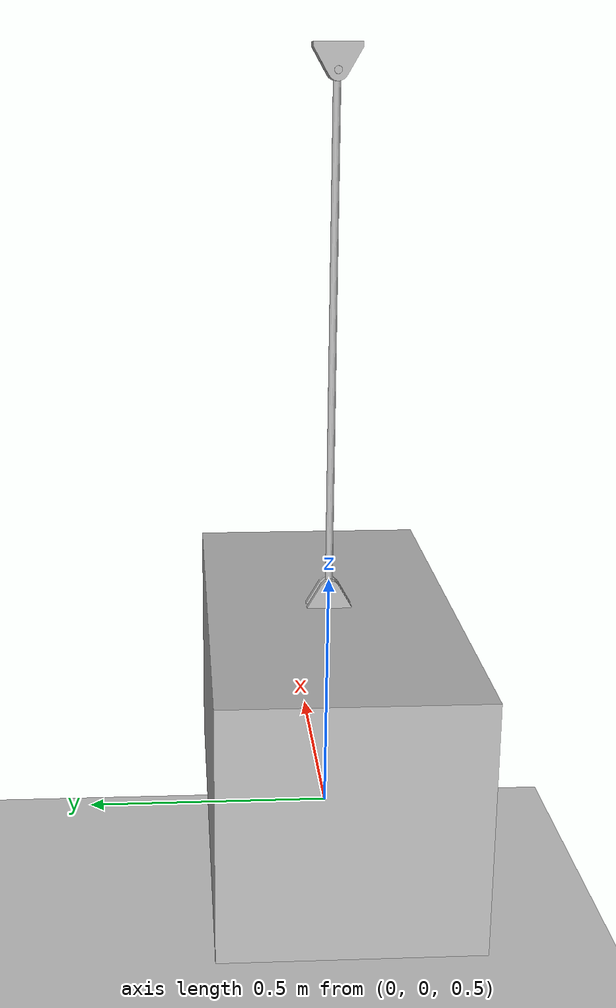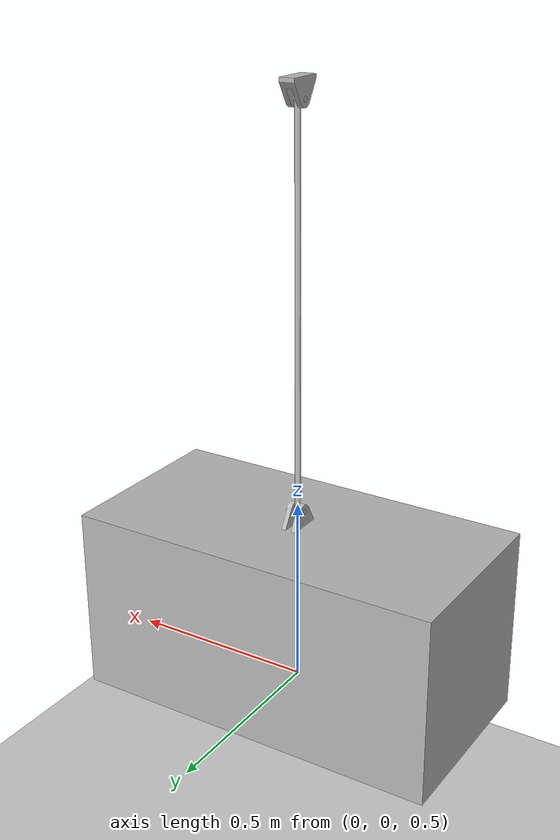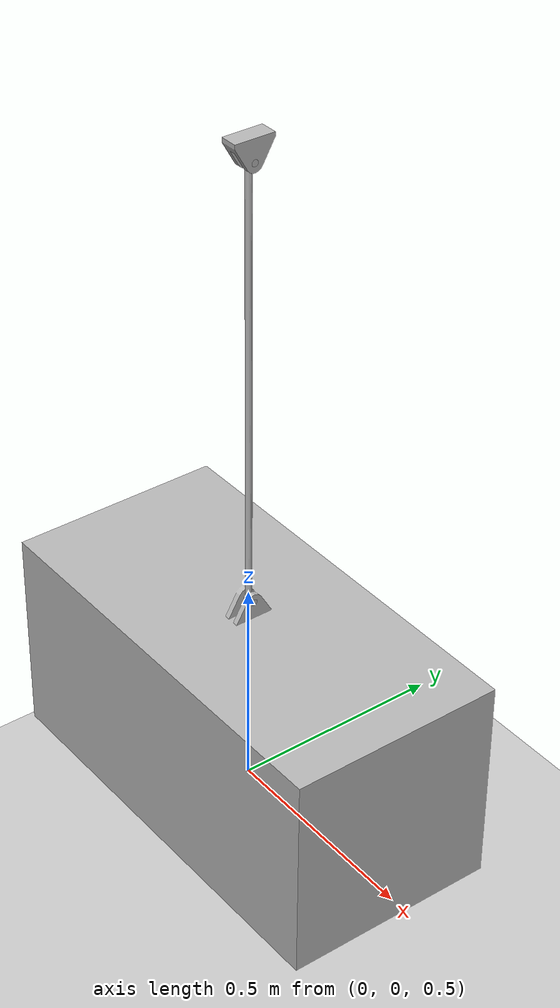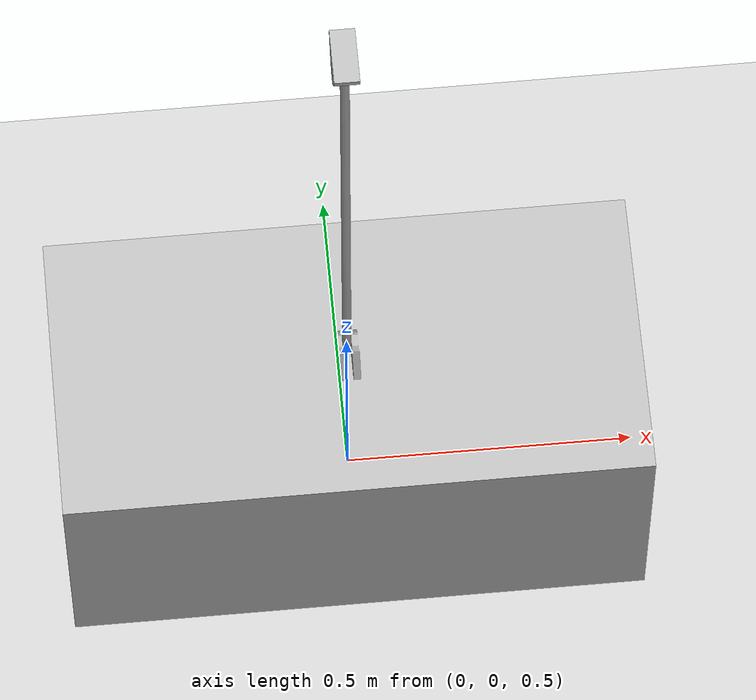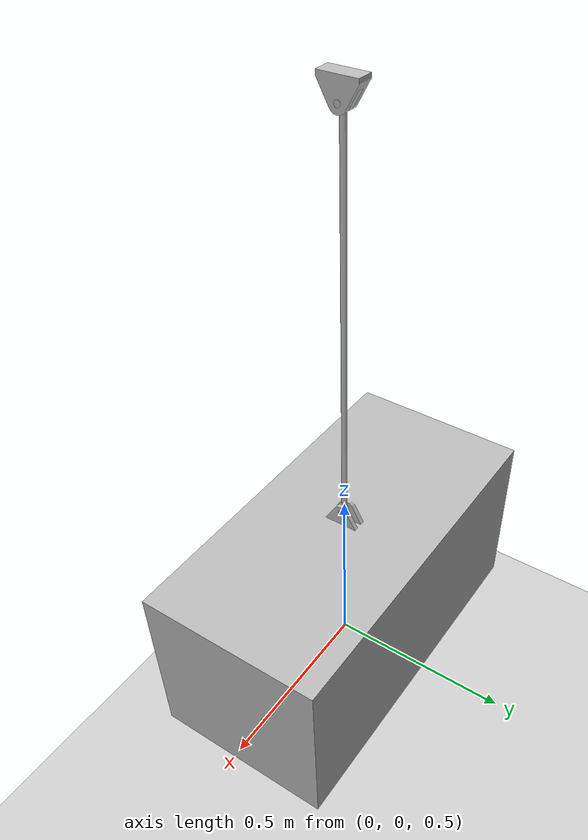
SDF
<?xml version="1.0" ?>
<sdf version="1.6">
  <world name="disturbance_pkgs_world">
    <physics name="default_physics" default="0" type="ode">
      <max_step_size>0.001</max_step_size>
      <real_time_factor>1</real_time_factor>
      <real_time_factor>1000</real_time_factor>
      <ode>
        <solver>
          <type>quick</type>
          <iters>100</iters>
          <sor>1.0</sor>
          <use_dynamic_moi_rescaling>false</use_dynamic_moi_rescaling>
        </solver>
      </ode>
    </physics>

    <include>
      <uri>model://ground_plane</uri>
    </include>

    <include>
      <uri>model://sun</uri>
    </include>

   <include>
      <uri>model://disturbance_generator</uri>
     	<pose frame=''>0 0 2.0 0 0 0</pose>
       <plugin name="plugin" filename="libdisturbance_pkgs.so"/>
    </include>
  </world>
</sdf>

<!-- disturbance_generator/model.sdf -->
<sdf version='1.6'>
  <model name='disturbance_generator'>

  <joint name="fixed to ground" type="fixed">
    <parent>world</parent>
    <child>base_link</child>
  </joint>

    <link name='base_link'>
      <pose frame=''>0 0 0 0 -0 0</pose>
      <inertial>
        <pose frame=''>0 0 0.027 0 -0 0</pose>
        <mass>1</mass>
        <inertia>
          <ixx>0.001</ixx>
          <ixy>0</ixy>
          <ixz>0</ixz>
          <iyy>0</iyy>
          <iyz>0</iyz>
          <izz>0.001</izz>
        </inertia>
      </inertial>
      <visual name='base_link_visual'>
        <pose frame=''>0 0 0 0 -0 0</pose>
        <geometry>
          <mesh>
            <scale>1 1 1</scale>
            <uri>model://disturbance_generator/meshes/base_link.STL</uri>
          </mesh>
        </geometry>
      </visual>
    </link>
    <link name='rod_link'>
      <pose frame=''>0 0 0 0 -0 0</pose>
      <inertial>
        <pose frame=''>0 0 -0.507 0 -0 0</pose>
        <mass>1</mass>
        <inertia>
          <ixx>0.097</ixx>
          <ixy>0</ixy>
          <ixz>0</ixz>
          <iyy>0.097</iyy>
          <iyz>0</iyz>
          <izz>0</izz>
        </inertia>
      </inertial>
      <visual name='rod_link_visual'>
        <pose frame=''>0 0 0 0 -0 0</pose>
        <geometry>
          <mesh>
            <scale>1 1 1</scale>
            <uri>model://disturbance_generator/meshes/rod_link.STL</uri>
          </mesh>
        </geometry>
      </visual>
    </link>
    <joint name='rod_joint' type='revolute'>
      <child>rod_link</child>
      <parent>base_link</parent>
      <axis>
        <xyz>1 0 0</xyz>
        <limit>
          <lower>-1.5707</lower>
          <upper>1.5707</upper>
        </limit>
        <dynamics>
          <spring_reference>0</spring_reference>
          <spring_stiffness>0</spring_stiffness>
        </dynamics>
        <use_parent_model_frame>1</use_parent_model_frame>
      </axis>
    </joint>
    <link name='mass_link'>
      <pose frame=''>0 0 -1.015 0 -0 0</pose>
      <inertial>
        <pose frame=''>0 0 -0.29 0 -0 0</pose>
        <mass>15</mass>
        <inertia>
          <ixx>0.625</ixx>
          <ixy>0</ixy>
          <ixz>0</ixz>
          <iyy>1.562</iyy>
          <iyz>0</iyz>
          <izz>1.562</izz>
        </inertia>
      </inertial>
      <collision name='mass_link_collision'>
        <pose frame=''>0 0 0 0 -0 0</pose>
        <geometry>
          <mesh>
            <scale>1 1 1</scale>
            <uri>model://disturbance_generator/meshes/mass_link.STL</uri>
          </mesh>
        </geometry>
      </collision>
      <visual name='mass_link_visual'>
        <pose frame=''>0 0 0 0 -0 0</pose>
        <geometry>
          <mesh>
            <scale>1 1 1</scale>
            <uri>model://disturbance_generator/meshes/mass_link.STL</uri>
          </mesh>
        </geometry>
      </visual>
    </link>
    <joint name='mass_joint' type='revolute'>
      <child>mass_link</child>
      <parent>rod_link</parent>
      <axis>
        <xyz>1 0 0</xyz>
        <limit>
          <lower>-0.785</lower>
          <upper>0.785</upper>
        </limit>
        <dynamics>
          <spring_reference>0</spring_reference>
          <spring_stiffness>0</spring_stiffness>
        </dynamics>
        <use_parent_model_frame>1</use_parent_model_frame>
      </axis>
    </joint>
  </model>
</sdf>
